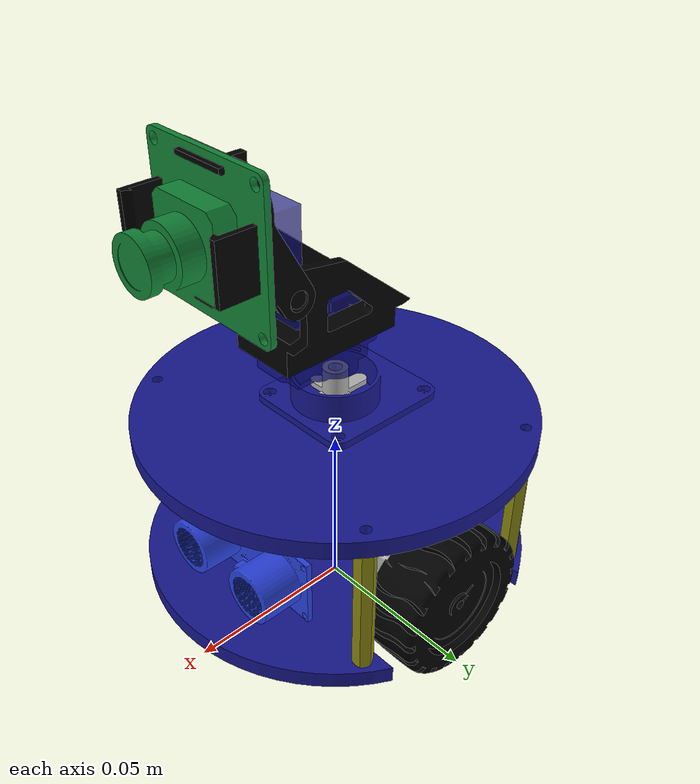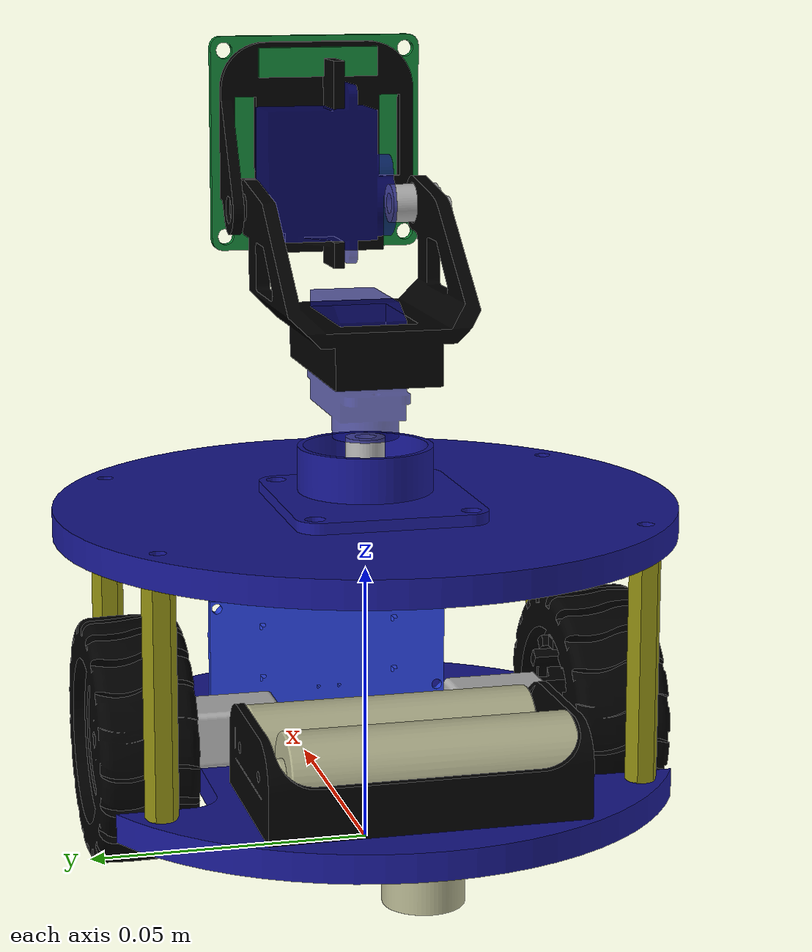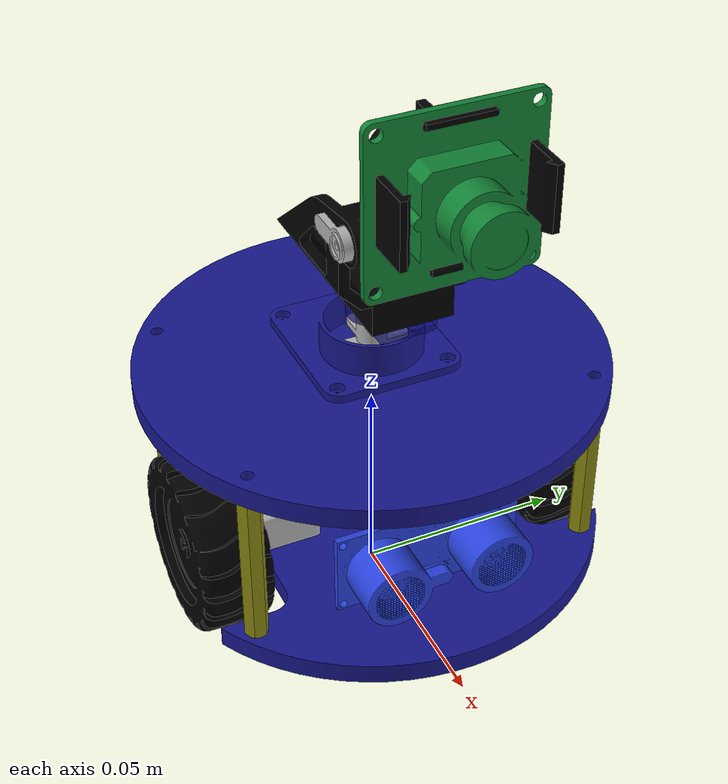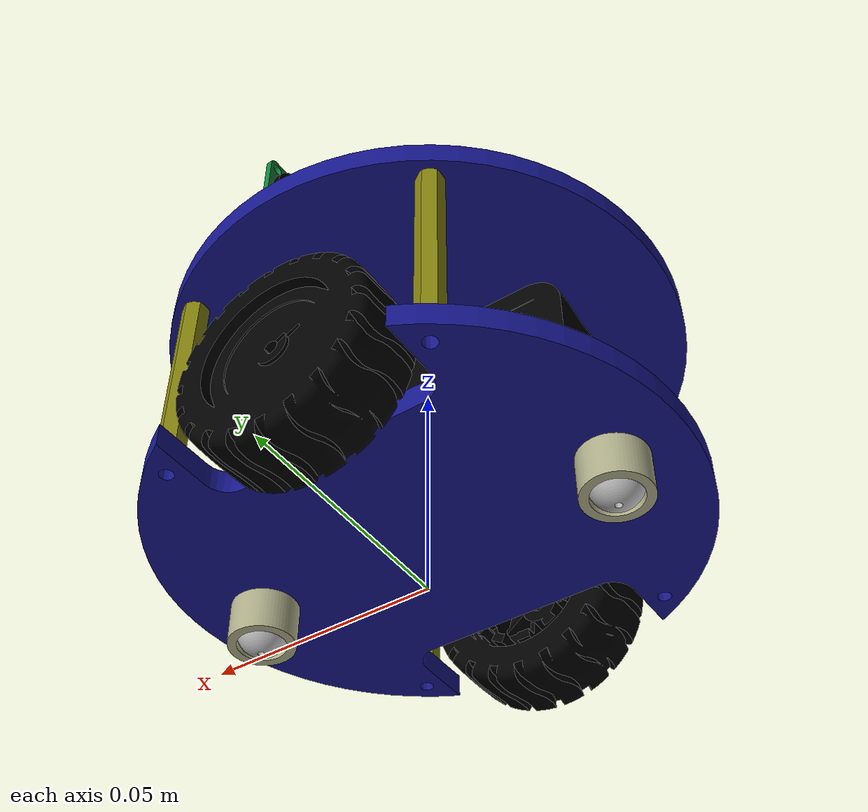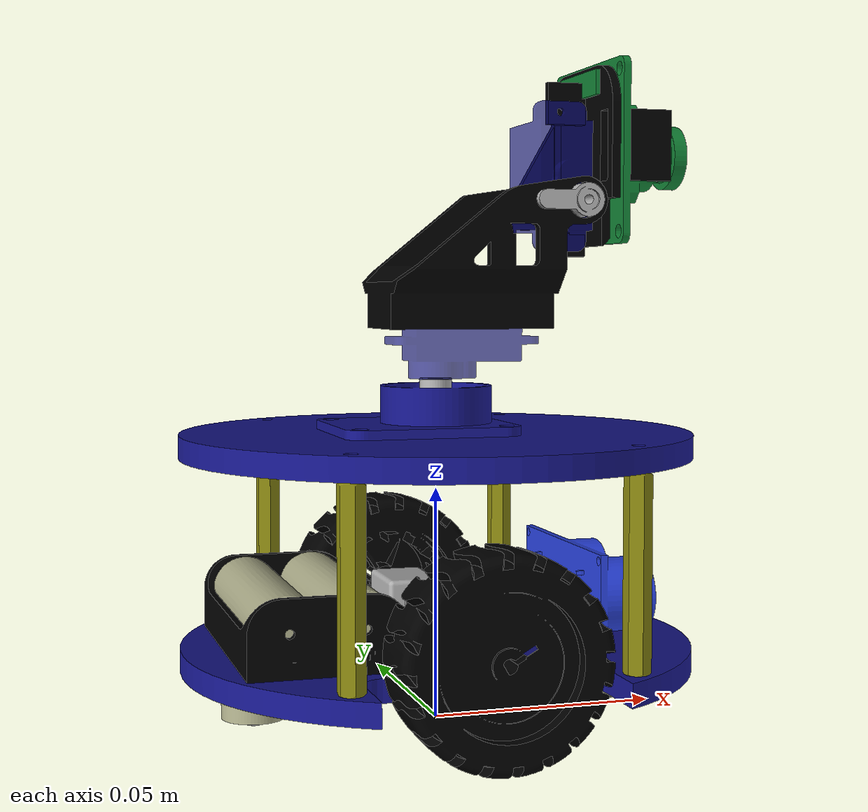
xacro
<?xml version="1.0" ?>
<robot name="alphabot" xmlns:xacro="http://www.ros.org/wiki/xacro">

<xacro:include filename="$(find alphabot_description)/urdf/materials.xacro" />
<link name="base_footprint" />

<link name="base_link">
  <inertial>
    <origin xyz="3.9964129120210354e-17 -1.949783532853795e-05 0.014547668321607015" rpy="0 0 0"/>
    <mass value="0.2"/>
    <inertia ixx="0.000125" iyy="0.000266" izz="0.000389" ixy="-0.0" iyz="-0.0" ixz="0.0"/>
  </inertial>
  <visual>
    <origin xyz="0 0 0" rpy="0 0 0"/>
    <geometry>
      <mesh filename="package://alphabot_description/meshes/base_link.stl" scale="0.001 0.001 0.001"/>
    </geometry>
    <material name="blue"/>
  </visual>
  <collision>
    <origin xyz="0 0 0" rpy="0 0 0"/>
    <geometry>
      <mesh filename="package://alphabot_description/meshes/base_link.stl" scale="0.001 0.001 0.001"/>
    </geometry>
  </collision>
</link>

<link name="spacer_1_1">
  <inertial>
    <origin xyz="-8.554354349876725e-08 -2.7824964554667986e-15 0.020056162439080906" rpy="0 0 0"/>
    <mass value="0.05"/>
    <inertia ixx="1e-06" iyy="1e-06" izz="0.0" ixy="-0.0" iyz="0.0" ixz="-0.0"/>
  </inertial>
  <visual>
    <origin xyz="-0.028948 -0.04191 -0.017048" rpy="0 0 0"/>
    <geometry>
      <mesh filename="package://alphabot_description/meshes/spacer_1_1.stl" scale="0.001 0.001 0.001"/>
    </geometry>
    <material name="gold"/>
  </visual>
  <collision>
    <origin xyz="-0.028948 -0.04191 -0.017048" rpy="0 0 0"/>
    <geometry>
      <mesh filename="package://alphabot_description/meshes/spacer_1_1.stl" scale="0.001 0.001 0.001"/>
    </geometry>
  </collision>
</link>

<link name="spacer_1_2">
  <inertial>
    <origin xyz="-8.554354354040061e-08 -2.7755575615628914e-15 0.020056162439080906" rpy="0 0 0"/>
    <mass value="0.05"/>
    <inertia ixx="1e-06" iyy="1e-06" izz="0.0" ixy="-0.0" iyz="0.0" ixz="-0.0"/>
  </inertial>
  <visual>
    <origin xyz="-0.028948 0.04191 -0.017048" rpy="0 0 0"/>
    <geometry>
      <mesh filename="package://alphabot_description/meshes/spacer_1_2.stl" scale="0.001 0.001 0.001"/>
    </geometry>
    <material name="gold"/>
  </visual>
  <collision>
    <origin xyz="-0.028948 0.04191 -0.017048" rpy="0 0 0"/>
    <geometry>
      <mesh filename="package://alphabot_description/meshes/spacer_1_2.stl" scale="0.001 0.001 0.001"/>
    </geometry>
  </collision>
</link>

<link name="spacer_1_3">
  <inertial>
    <origin xyz="8.554362094723156e-08 -2.7824964554667986e-15 0.02005616243908087" rpy="0 0 0"/>
    <mass value="0.05"/>
    <inertia ixx="1e-06" iyy="1e-06" izz="0.0" ixy="-0.0" iyz="0.0" ixz="-0.0"/>
  </inertial>
  <visual>
    <origin xyz="0.028948 0.04191 -0.017048" rpy="0 0 0"/>
    <geometry>
      <mesh filename="package://alphabot_description/meshes/spacer_1_3.stl" scale="0.001 0.001 0.001"/>
    </geometry>
    <material name="gold"/>
  </visual>
  <collision>
    <origin xyz="0.028948 0.04191 -0.017048" rpy="0 0 0"/>
    <geometry>
      <mesh filename="package://alphabot_description/meshes/spacer_1_3.stl" scale="0.001 0.001 0.001"/>
    </geometry>
  </collision>
</link>

<link name="spacer_1_4">
  <inertial>
    <origin xyz="8.554362097498713e-08 -2.7478019859472624e-15 0.02005616243908087" rpy="0 0 0"/>
    <mass value="0.05"/>
    <inertia ixx="1e-06" iyy="1e-06" izz="0.0" ixy="-0.0" iyz="0.0" ixz="-0.0"/>
  </inertial>
  <visual>
    <origin xyz="0.028948 -0.04191 -0.017048" rpy="0 0 0"/>
    <geometry>
      <mesh filename="package://alphabot_description/meshes/spacer_1_4.stl" scale="0.001 0.001 0.001"/>
    </geometry>
    <material name="gold"/>
  </visual>
  <collision>
    <origin xyz="0.028948 -0.04191 -0.017048" rpy="0 0 0"/>
    <geometry>
      <mesh filename="package://alphabot_description/meshes/spacer_1_4.stl" scale="0.001 0.001 0.001"/>
    </geometry>
  </collision>
</link>

<link name="ultasonic_1">
  <inertial>
    <origin xyz="0.033193707682986046 -9.529009860237083e-08 -0.0020378179399959465" rpy="0 0 0"/>
    <mass value="0.02930398813229992"/>
    <inertia ixx="6e-06" iyy="1e-06" izz="5e-06" ixy="-0.0" iyz="0.0" ixz="-0.0"/>
  </inertial>
  <visual>
    <origin xyz="-0.0 -0.0 -0.029095" rpy="0 0 0"/>
    <geometry>
      <mesh filename="package://alphabot_description/meshes/ultasonic_1.stl" scale="0.001 0.001 0.001"/>
    </geometry>
    <material name="blue_2"/>
  </visual>
  <collision>
    <origin xyz="-0.0 -0.0 -0.029095" rpy="0 0 0"/>
    <geometry>
      <mesh filename="package://alphabot_description/meshes/ultasonic_1.stl" scale="0.001 0.001 0.001"/>
    </geometry>
  </collision>
</link>

<link name="AA_1">
  <inertial>
    <origin xyz="1.7694179454963432e-16 -0.024725409875466925 -3.3167839298339774e-07" rpy="0 0 0"/>
    <mass value="0.2"/>
    <inertia ixx="1.3e-05" iyy="2e-06" izz="1.3e-05" ixy="0.0" iyz="-0.0" ixz="0.0"/>
  </inertial>
  <visual>
    <origin xyz="0.02225 -0.026 -0.026048" rpy="0 0 0"/>
    <geometry>
      <mesh filename="package://alphabot_description/meshes/AA_1.stl" scale="0.001 0.001 0.001"/>
    </geometry>
    <material name="white"/>
  </visual>
  <collision>
    <origin xyz="0.02225 -0.026 -0.026048" rpy="0 0 0"/>
    <geometry>
      <mesh filename="package://alphabot_description/meshes/AA_1.stl" scale="0.001 0.001 0.001"/>
    </geometry>
  </collision>
</link>

<link name="AA_2">
  <inertial>
    <origin xyz="2.0816681711721685e-16 0.024725409875466935 -3.3167839298339774e-07" rpy="0 0 0"/>
    <mass value="0.2"/>
    <inertia ixx="1.3e-05" iyy="2e-06" izz="1.3e-05" ixy="-0.0" iyz="-0.0" ixz="-0.0"/>
  </inertial>
  <visual>
    <origin xyz="0.03775 0.026 -0.026048" rpy="0 0 0"/>
    <geometry>
      <mesh filename="package://alphabot_description/meshes/AA_2.stl" scale="0.001 0.001 0.001"/>
    </geometry>
    <material name="white"/>
  </visual>
  <collision>
    <origin xyz="0.03775 0.026 -0.026048" rpy="0 0 0"/>
    <geometry>
      <mesh filename="package://alphabot_description/meshes/AA_2.stl" scale="0.001 0.001 0.001"/>
    </geometry>
  </collision>
</link>

<link name="battery_case_1">
  <inertial>
    <origin xyz="-0.030001214328793938 -3.4027627677573753e-05 -0.008341128938452552" rpy="0 0 0"/>
    <mass value="0.06781923232527433"/>
    <inertia ixx="2.2e-05" iyy="8e-06" izz="2.8e-05" ixy="-0.0" iyz="0.0" ixz="0.0"/>
  </inertial>
  <visual>
    <origin xyz="-0.0 -0.0 -0.029095" rpy="0 0 0"/>
    <geometry>
      <mesh filename="package://alphabot_description/meshes/battery_case_1.stl" scale="0.001 0.001 0.001"/>
    </geometry>
    <material name="black"/>
  </visual>
  <collision>
    <origin xyz="-0.0 -0.0 -0.029095" rpy="0 0 0"/>
    <geometry>
      <mesh filename="package://alphabot_description/meshes/battery_case_1.stl" scale="0.001 0.001 0.001"/>
    </geometry>
  </collision>
</link>

<link name="motor_1">
  <inertial>
    <origin xyz="-5.612031395152428e-11 -0.024604091884807677 -0.007047331744742258" rpy="0 0 0"/>
    <mass value="0.05"/>
    <inertia ixx="0.0" iyy="0.0" izz="0.0" ixy="-0.0" iyz="0.0" ixz="0.0"/>
  </inertial>
  <visual>
    <origin xyz="-0.0 -0.0 -0.029095" rpy="0 0 0"/>
    <geometry>
      <mesh filename="package://alphabot_description/meshes/motor_1.stl" scale="0.001 0.001 0.001"/>
    </geometry>
    <material name="silver"/>
  </visual>
  <collision>
    <origin xyz="-0.0 -0.0 -0.029095" rpy="0 0 0"/>
    <geometry>
      <mesh filename="package://alphabot_description/meshes/motor_1.stl" scale="0.001 0.001 0.001"/>
    </geometry>
  </collision>
</link>

<link name="motor_2">
  <inertial>
    <origin xyz="5.6120382785351805e-11 0.024604091884807677 -0.007047331744742258" rpy="0 0 0"/>
    <mass value="0.05"/>
    <inertia ixx="0.0" iyy="0.0" izz="0.0" ixy="-0.0" iyz="-0.0" ixz="-0.0"/>
  </inertial>
  <visual>
    <origin xyz="-0.0 -0.0 -0.029095" rpy="0 0 0"/>
    <geometry>
      <mesh filename="package://alphabot_description/meshes/motor_2.stl" scale="0.001 0.001 0.001"/>
    </geometry>
    <material name="silver"/>
  </visual>
  <collision>
    <origin xyz="-0.0 -0.0 -0.029095" rpy="0 0 0"/>
    <geometry>
      <mesh filename="package://alphabot_description/meshes/motor_2.stl" scale="0.001 0.001 0.001"/>
    </geometry>
  </collision>
</link>

<link name="top_link_1">
  <inertial>
    <origin xyz="0.028960085543582276 0.04191000000000044 0.0024996683216068558" rpy="0 0 0"/>
    <mass value="0.37189545514665234"/>
    <inertia ixx="0.000281" iyy="0.000282" izz="0.000561" ixy="0.0" iyz="-0.0" ixz="0.0"/>
  </inertial>
  <visual>
    <origin xyz="0.028948 0.04191 -0.057423" rpy="0 0 0"/>
    <geometry>
      <mesh filename="package://alphabot_description/meshes/top_link_1.stl" scale="0.001 0.001 0.001"/>
    </geometry>
    <material name="blue"/>
  </visual>
  <collision>
    <origin xyz="0.028948 0.04191 -0.057423" rpy="0 0 0"/>
    <geometry>
      <mesh filename="package://alphabot_description/meshes/top_link_1.stl" scale="0.001 0.001 0.001"/>
    </geometry>
  </collision>
</link>

<link name="pantilt_1_1">
  <inertial>
    <origin xyz="-0.0036327417220515914 -2.873247422695575e-15 0.0018087943330409653" rpy="0 0 0"/>
    <mass value="0.02484644401179895"/>
    <inertia ixx="2e-06" iyy="3e-06" izz="5e-06" ixy="0.0" iyz="-0.0" ixz="-0.0"/>
  </inertial>
  <visual>
    <origin xyz="-1.2e-05 0.0 -0.062423" rpy="0 0 0"/>
    <geometry>
      <mesh filename="package://alphabot_description/meshes/pantilt_1_1.stl" scale="0.001 0.001 0.001"/>
    </geometry>
    <material name="blue"/>
  </visual>
  <collision>
    <origin xyz="-1.2e-05 0.0 -0.062423" rpy="0 0 0"/>
    <geometry>
      <mesh filename="package://alphabot_description/meshes/pantilt_1_1.stl" scale="0.001 0.001 0.001"/>
    </geometry>
  </collision>
</link>

<link name="servo_emax_1_1">
  <inertial>
    <origin xyz="8.554358228704865e-08 1.254629415068201e-13 0.0035263014079521815" rpy="0 0 0"/>
    <mass value="0.0035428307305659244"/>
    <inertia ixx="0.0" iyy="0.0" izz="0.0" ixy="-0.0" iyz="-0.0" ixz="0.0"/>
  </inertial>
  <visual>
    <origin xyz="-1.2e-05 0.0 -0.064423" rpy="0 0 0"/>
    <geometry>
      <mesh filename="package://alphabot_description/meshes/servo_emax_1_1.stl" scale="0.001 0.001 0.001"/>
    </geometry>
    <material name="silver"/>
  </visual>
  <collision>
    <origin xyz="-1.2e-05 0.0 -0.064423" rpy="0 0 0"/>
    <geometry>
      <mesh filename="package://alphabot_description/meshes/servo_emax_1_1.stl" scale="0.001 0.001 0.001"/>
    </geometry>
  </collision>
</link>

<link name="pantilt_2_1">
  <inertial>
    <origin xyz="-0.0044345407767680915 0.08095404581089227 0.003603404587610881" rpy="0 0 0"/>
    <mass value="0.05139456940551715"/>
    <inertia ixx="1e-05" iyy="1.1e-05" izz="1.4e-05" ixy="-0.0" iyz="-0.0" ixz="-2e-06"/>
  </inertial>
  <visual>
    <origin xyz="-0.01175 0.081723 -0.091723" rpy="0 0 0"/>
    <geometry>
      <mesh filename="package://alphabot_description/meshes/pantilt_2_1.stl" scale="0.001 0.001 0.001"/>
    </geometry>
    <material name="black"/>
  </visual>
  <collision>
    <origin xyz="-0.01175 0.081723 -0.091723" rpy="0 0 0"/>
    <geometry>
      <mesh filename="package://alphabot_description/meshes/pantilt_2_1.stl" scale="0.001 0.001 0.001"/>
    </geometry>
  </collision>
</link>

<link name="servo_emax_2_1">
  <inertial>
    <origin xyz="-0.09208845165187876 -0.04184616942907199 -0.06897233167823215" rpy="0 0 0"/>
    <mass value="0.0026502814230264554"/>
    <inertia ixx="0.0" iyy="0.0" izz="0.0" ixy="-0.0" iyz="-0.0" ixz="-0.0"/>
  </inertial>
  <visual>
    <origin xyz="-0.118253 -0.025389 -0.180545" rpy="0 0 0"/>
    <geometry>
      <mesh filename="package://alphabot_description/meshes/servo_emax_2_1.stl" scale="0.001 0.001 0.001"/>
    </geometry>
    <material name="silver"/>
  </visual>
  <collision>
    <origin xyz="-0.118253 -0.025389 -0.180545" rpy="0 0 0"/>
    <geometry>
      <mesh filename="package://alphabot_description/meshes/servo_emax_2_1.stl" scale="0.001 0.001 0.001"/>
    </geometry>
  </collision>
</link>

<link name="pantilt_3_1">
  <inertial>
    <origin xyz="0.13325626443826744 -0.013095879873687058 0.02043119326869315" rpy="0 0 0"/>
    <mass value="0.025707768034284914"/>
    <inertia ixx="6e-06" iyy="3e-06" izz="4e-06" ixy="0.0" iyz="0.0" ixz="-0.0"/>
  </inertial>
  <visual>
    <origin xyz="0.098261 -0.0148 -0.102061" rpy="0 0 0"/>
    <geometry>
      <mesh filename="package://alphabot_description/meshes/pantilt_3_1.stl" scale="0.001 0.001 0.001"/>
    </geometry>
    <material name="black"/>
  </visual>
  <collision>
    <origin xyz="0.098261 -0.0148 -0.102061" rpy="0 0 0"/>
    <geometry>
      <mesh filename="package://alphabot_description/meshes/pantilt_3_1.stl" scale="0.001 0.001 0.001"/>
    </geometry>
  </collision>
</link>

<link name="servo_2_1">
  <inertial>
    <origin xyz="8.55435810034888e-08 0.012439350245232213 0.005558642662359281" rpy="0 0 0"/>
    <mass value="0.048166128445804444"/>
    <inertia ixx="4e-06" iyy="3e-06" izz="3e-06" ixy="-0.0" iyz="-0.0" ixz="-0.0"/>
  </inertial>
  <visual>
    <origin xyz="-0.027112 0.0112 -0.111573" rpy="0 0 0"/>
    <geometry>
      <mesh filename="package://alphabot_description/meshes/servo_2_1.stl" scale="0.001 0.001 0.001"/>
    </geometry>
    <material name="light_blue"/>
  </visual>
  <collision>
    <origin xyz="-0.027112 0.0112 -0.111573" rpy="0 0 0"/>
    <geometry>
      <mesh filename="package://alphabot_description/meshes/servo_2_1.stl" scale="0.001 0.001 0.001"/>
    </geometry>
  </collision>
</link>

<link name="servo_1_1">
  <inertial>
    <origin xyz="0.005559059884334861 -1.4876988529977098e-15 0.012439018566839363" rpy="0 0 0"/>
    <mass value="0.048166128445804444"/>
    <inertia ixx="3e-06" iyy="4e-06" izz="3e-06" ixy="-0.0" iyz="-0.0" ixz="-0.0"/>
  </inertial>
  <visual>
    <origin xyz="-1.2e-05 0.0 -0.073923" rpy="0 0 0"/>
    <geometry>
      <mesh filename="package://alphabot_description/meshes/servo_1_1.stl" scale="0.001 0.001 0.001"/>
    </geometry>
    <material name="light_blue"/>
  </visual>
  <collision>
    <origin xyz="-1.2e-05 0.0 -0.073923" rpy="0 0 0"/>
    <geometry>
      <mesh filename="package://alphabot_description/meshes/servo_1_1.stl" scale="0.001 0.001 0.001"/>
    </geometry>
  </collision>
</link>

<link name="camera_1">
  <inertial>
    <origin xyz="0.0054251818860430664 -1.398078701420058e-15 0.0006839016107979407" rpy="0 0 0"/>
    <mass value="0.007223141621539521"/>
    <inertia ixx="1e-06" iyy="1e-06" izz="1e-06" ixy="-0.0" iyz="-0.0" ixz="0.0"/>
  </inertial>
  <visual>
    <origin xyz="-0.035312 -0.0007 -0.122273" rpy="0 0 0"/>
    <geometry>
      <mesh filename="package://alphabot_description/meshes/camera_1.stl" scale="0.001 0.001 0.001"/>
    </geometry>
    <material name="green"/>
  </visual>
  <collision>
    <origin xyz="-0.035312 -0.0007 -0.122273" rpy="0 0 0"/>
    <geometry>
      <mesh filename="package://alphabot_description/meshes/camera_1.stl" scale="0.001 0.001 0.001"/>
    </geometry>
  </collision>
</link>

<link name="ball_1">
  <inertial>
    <origin xyz="4.163336342344337e-17 0.0 -0.001000409009021104" rpy="0 0 0"/>
    <mass value="0.005036225223550487"/>
    <inertia ixx="0.0" iyy="0.0" izz="0.0" ixy="0.0" iyz="-0.0" ixz="-0.0"/>
  </inertial>
  <visual>
    <origin xyz="0.04 0.0 -0.007547" rpy="0 0 0"/>
    <geometry>
      <mesh filename="package://alphabot_description/meshes/ball_1.stl" scale="0.001 0.001 0.001"/>
    </geometry>
    <material name="silver"/>
  </visual>
  <collision>
    <origin xyz="0.04 0.0 -0.007547" rpy="0 0 0"/>
    <geometry>
      <mesh filename="package://alphabot_description/meshes/ball_1.stl" scale="0.001 0.001 0.001"/>
    </geometry>
  </collision>
</link>

<link name="housing_1">
  <inertial>
    <origin xyz="-0.03999999999999995 -1.7763568394002505e-17 -0.016681638158599674" rpy="0 0 0"/>
    <mass value="0.003819569070267199"/>
    <inertia ixx="0.0" iyy="0.0" izz="0.0" ixy="0.0" iyz="0.0" ixz="0.0"/>
  </inertial>
  <visual>
    <origin xyz="-0.0 -0.0 -0.024095" rpy="0 0 0"/>
    <geometry>
      <mesh filename="package://alphabot_description/meshes/housing_1.stl" scale="0.001 0.001 0.001"/>
    </geometry>
    <material name="white"/>
  </visual>
  <collision>
    <origin xyz="-0.0 -0.0 -0.024095" rpy="0 0 0"/>
    <geometry>
      <mesh filename="package://alphabot_description/meshes/housing_1.stl" scale="0.001 0.001 0.001"/>
    </geometry>
  </collision>
</link>

<link name="ball_2">
  <inertial>
    <origin xyz="0.08000000000000003 -1.7763568394002505e-17 -0.0010004090090210953" rpy="0 0 0"/>
    <mass value="0.005036225223550487"/>
    <inertia ixx="0.0" iyy="0.0" izz="0.0" ixy="0.0" iyz="-0.0" ixz="0.0"/>
  </inertial>
  <visual>
    <origin xyz="0.04 0.0 -0.007547" rpy="0 0 0"/>
    <geometry>
      <mesh filename="package://alphabot_description/meshes/ball_2.stl" scale="0.001 0.001 0.001"/>
    </geometry>
    <material name="silver"/>
  </visual>
  <collision>
    <origin xyz="0.04 0.0 -0.007547" rpy="0 0 0"/>
    <geometry>
      <mesh filename="package://alphabot_description/meshes/ball_2.stl" scale="0.001 0.001 0.001"/>
    </geometry>
  </collision>
</link>

<link name="housing_2">
  <inertial>
    <origin xyz="0.040000000000000015 -3.552713678800501e-17 -0.016681638158599674" rpy="0 0 0"/>
    <mass value="0.003819569070267199"/>
    <inertia ixx="0.0" iyy="0.0" izz="0.0" ixy="0.0" iyz="0.0" ixz="-0.0"/>
  </inertial>
  <visual>
    <origin xyz="-0.0 -0.0 -0.024095" rpy="0 0 0"/>
    <geometry>
      <mesh filename="package://alphabot_description/meshes/housing_2.stl" scale="0.001 0.001 0.001"/>
    </geometry>
    <material name="white"/>
  </visual>
  <collision>
    <origin xyz="-0.0 -0.0 -0.024095" rpy="0 0 0"/>
    <geometry>
      <mesh filename="package://alphabot_description/meshes/housing_2.stl" scale="0.001 0.001 0.001"/>
    </geometry>
  </collision>
</link>

<link name="left_wheel_1">
  <inertial>
    <origin xyz="3.608732648937964e-06 0.07958937458754446 -2.519122826071668e-06" rpy="0 0 0"/>
    <mass value="0.1"/>
    <inertia ixx="1.8e-05" iyy="3.1e-05" izz="1.8e-05" ixy="-0.0" iyz="0.0" ixz="-0.0"/>
  </inertial>
  <visual>
    <origin xyz="0.0 0.037 -0.022048" rpy="0 0 0"/>
    <geometry>
      <mesh filename="package://alphabot_description/meshes/left_wheel_1.stl" scale="0.001 0.001 0.001"/>
    </geometry>
    <material name="black"/>
  </visual>
  <collision>
    <origin xyz="0.0 0.037 -0.022048" rpy="0 0 0"/>
    <geometry>
      <mesh filename="package://alphabot_description/meshes/left_wheel_1.stl" scale="0.001 0.001 0.001"/>
    </geometry>
  </collision>
</link>

<link name="right_wheel_1">
  <inertial>
    <origin xyz="-3.6087326488468997e-06 -0.005589374587544396 -2.5191228260612597e-06" rpy="0 0 0"/>
    <mass value="0.1"/>
    <inertia ixx="1.8e-05" iyy="3.1e-05" izz="1.8e-05" ixy="-0.0" iyz="-0.0" ixz="0.0"/>
  </inertial>
  <visual>
    <origin xyz="0.0 0.037 -0.022048" rpy="0 0 0"/>
    <geometry>
      <mesh filename="package://alphabot_description/meshes/right_wheel_1.stl" scale="0.001 0.001 0.001"/>
    </geometry>
    <material name="black"/>
  </visual>
  <collision>
    <origin xyz="0.0 0.037 -0.022048" rpy="0 0 0"/>
    <geometry>
      <mesh filename="package://alphabot_description/meshes/right_wheel_1.stl" scale="0.001 0.001 0.001"/>
    </geometry>
  </collision>
</link>

<joint name="base_footprint_joint" type="fixed">
  <parent link="base_footprint" />
  <child link="base_link" />
</joint>

<joint name="Rigid 6" type="fixed">
  <origin xyz="0.028948 0.04191 0.017048" rpy="0 0 0"/>
  <parent link="base_link"/>
  <child link="spacer_1_1"/>
</joint>

<joint name="Rigid 7" type="fixed">
  <origin xyz="0.028948 -0.04191 0.017048" rpy="0 0 0"/>
  <parent link="base_link"/>
  <child link="spacer_1_2"/>
</joint>

<joint name="Rigid 8" type="fixed">
  <origin xyz="-0.028948 -0.04191 0.017048" rpy="0 0 0"/>
  <parent link="base_link"/>
  <child link="spacer_1_3"/>
</joint>

<joint name="Rigid 9" type="fixed">
  <origin xyz="-0.028948 0.04191 0.017048" rpy="0 0 0"/>
  <parent link="base_link"/>
  <child link="spacer_1_4"/>
</joint>

<joint name="Rigid 10" type="fixed">
  <origin xyz="0.0 0.0 0.029095" rpy="0 0 0"/>
  <parent link="base_link"/>
  <child link="ultasonic_1"/>
</joint>

<joint name="Rigid 13" type="fixed">
  <origin xyz="-0.02225 0.026 -0.003047" rpy="0 0 0"/>
  <parent link="battery_case_1"/>
  <child link="AA_1"/>
</joint>

<joint name="Rigid 14" type="fixed">
  <origin xyz="-0.03775 -0.026 -0.003047" rpy="0 0 0"/>
  <parent link="battery_case_1"/>
  <child link="AA_2"/>
</joint>

<joint name="Rigid 15" type="fixed">
  <origin xyz="0.0 0.0 0.029095" rpy="0 0 0"/>
  <parent link="base_link"/>
  <child link="battery_case_1"/>
</joint>

<joint name="Rigid 16" type="fixed">
  <origin xyz="0.0 0.0 0.029095" rpy="0 0 0"/>
  <parent link="base_link"/>
  <child link="motor_1"/>
</joint>

<joint name="Rigid 17" type="fixed">
  <origin xyz="0.0 0.0 0.029095" rpy="0 0 0"/>
  <parent link="base_link"/>
  <child link="motor_2"/>
</joint>

<joint name="Rigid 20" type="fixed">
  <origin xyz="0.0 0.0 0.040375" rpy="0 0 0"/>
  <parent link="spacer_1_3"/>
  <child link="top_link_1"/>
</joint>

<joint name="Rigid 21" type="fixed">
  <origin xyz="0.02896 0.04191 0.005" rpy="0 0 0"/>
  <parent link="top_link_1"/>
  <child link="pantilt_1_1"/>
</joint>

<joint name="Rigid 22" type="fixed">
  <origin xyz="0.0 0.0 0.002" rpy="0 0 0"/>
  <parent link="pantilt_1_1"/>
  <child link="servo_emax_1_1"/>
</joint>

<joint name="Rigid 24" type="fixed">
  <origin xyz="0.011738 -0.081723 0.0178" rpy="0 0 0"/>
  <parent link="servo_1_1"/>
  <child link="pantilt_2_1"/>
</joint>

<joint name="Rigid 27" type="fixed">
  <origin xyz="0.106503 0.107112 0.088822" rpy="0 0 0"/>
  <parent link="pantilt_2_1"/>
  <child link="servo_emax_2_1"/>
</joint>

<joint name="Rigid 29" type="fixed">
  <origin xyz="-0.125373 0.026 -0.009512" rpy="0 0 0"/>
  <parent link="servo_2_1"/>
  <child link="pantilt_3_1"/>
</joint>

<joint name="Revolute 30" type="continuous">
  <origin xyz="-0.091141 -0.036589 -0.068972" rpy="0 0 0"/>
  <parent link="servo_emax_2_1"/>
  <child link="servo_2_1"/>
  <axis xyz="0.0 1.0 0.0"/>
</joint>

<joint name="Revolute 31" type="continuous">
  <origin xyz="0.0 0.0 0.0095" rpy="0 0 0"/>
  <parent link="servo_emax_1_1"/>
  <child link="servo_1_1"/>
  <axis xyz="-0.0 -0.0 1.0"/>
</joint>

<joint name="Rigid 32" type="fixed">
  <origin xyz="0.133573 -0.0141 0.020212" rpy="0 0 0"/>
  <parent link="pantilt_3_1"/>
  <child link="camera_1"/>
</joint>

<joint name="Rigid 43" type="fixed">
  <origin xyz="-0.04 -0.0 -0.016548" rpy="0 0 0"/>
  <parent link="housing_1"/>
  <child link="ball_1"/>
</joint>

<joint name="Rigid 44" type="fixed">
  <origin xyz="0.0 0.0 0.024095" rpy="0 0 0"/>
  <parent link="base_link"/>
  <child link="housing_1"/>
</joint>

<joint name="Rigid 45" type="fixed">
  <origin xyz="-0.04 -0.0 -0.016548" rpy="0 0 0"/>
  <parent link="housing_2"/>
  <child link="ball_2"/>
</joint>

<joint name="Rigid 46" type="fixed">
  <origin xyz="0.0 0.0 0.024095" rpy="0 0 0"/>
  <parent link="base_link"/>
  <child link="housing_2"/>
</joint>

<joint name="Revolute 18" type="continuous">
  <origin xyz="-0.0 -0.037 -0.007047" rpy="0 0 0"/>
  <parent link="motor_2"/>
  <child link="left_wheel_1"/>
  <axis xyz="0.0 1.0 -0.0"/>
</joint>

<joint name="Revolute 19" type="continuous">
  <origin xyz="-0.0 -0.037 -0.007047" rpy="0 0 0"/>
  <parent link="motor_1"/>
  <child link="right_wheel_1"/>
  <axis xyz="0.0 1.0 -0.0"/>
</joint>

</robot>

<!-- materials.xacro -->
<robot name="alphabot" xmlns:xacro="http://www.ros.org/wiki/xacro" >

<material name="silver">
  <color rgba="0.700 0.700 0.700 1.000"/>
</material>

<material name="gold">
  <color rgba="0.54 0.53 0.06 1.000"/>
</material>

<material name="black">
  <color rgba="0.0 0.0 0.0 1.000"/>
</material>

<material name="blue">
  <color rgba="0.09 0.09 0.56 1.000"/>
</material>

<material name="light_blue">
  <color rgba="0.09 0.09 0.56 0.7"/>
</material>

<material name="blue_2">
  <color rgba="0.16 0.26 0.87 1.000"/>
</material>

<material name="white">
  <color rgba="0.69 0.69 0.55 1.000"/>
</material>

<material name="green">
  <color rgba="0.07 0.51 0.21 1.000"/>
</material>

</robot>
